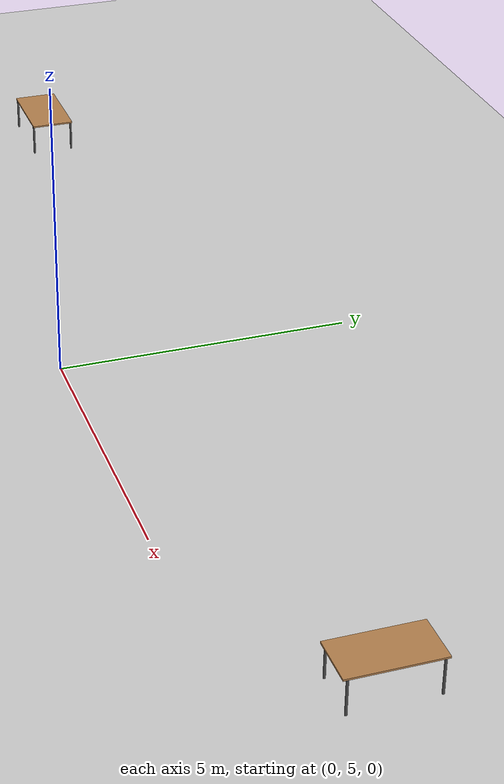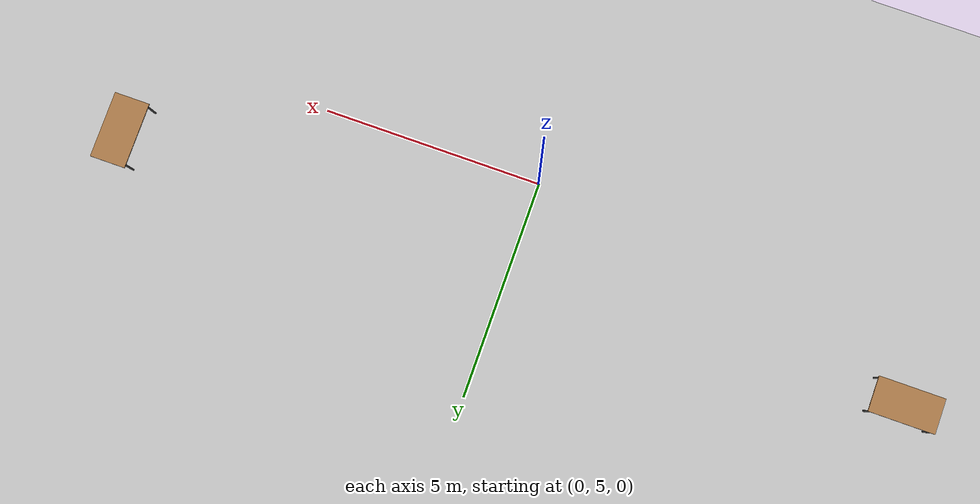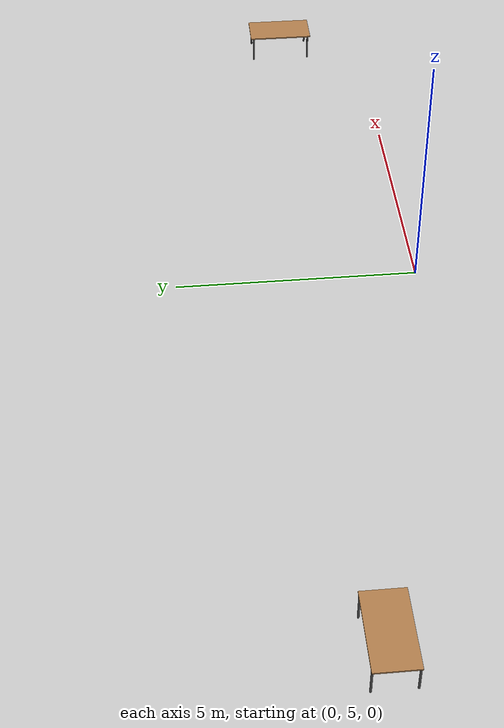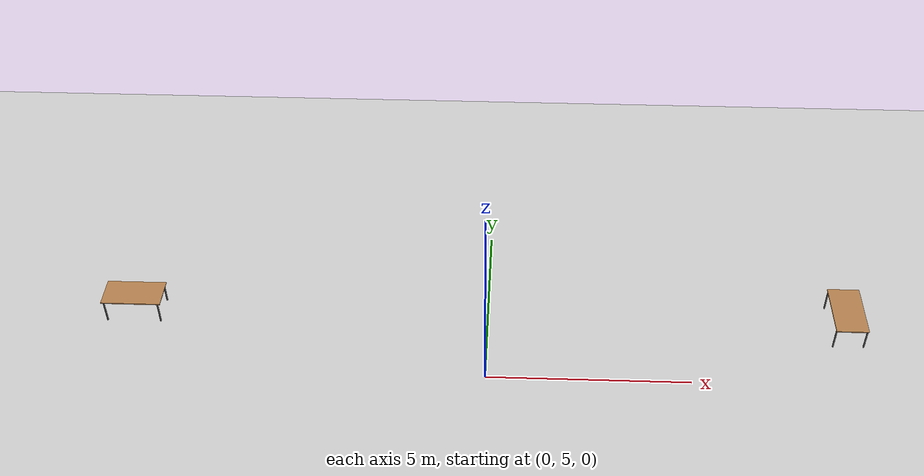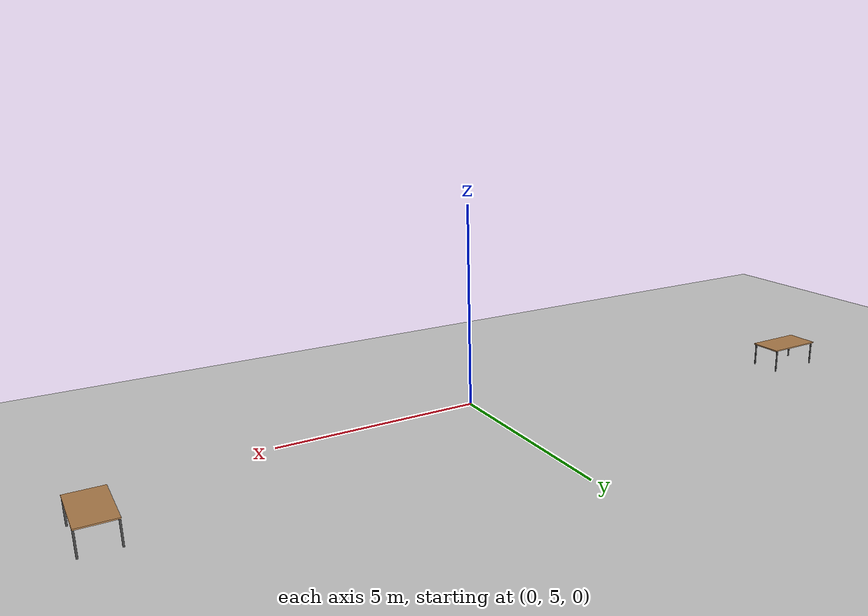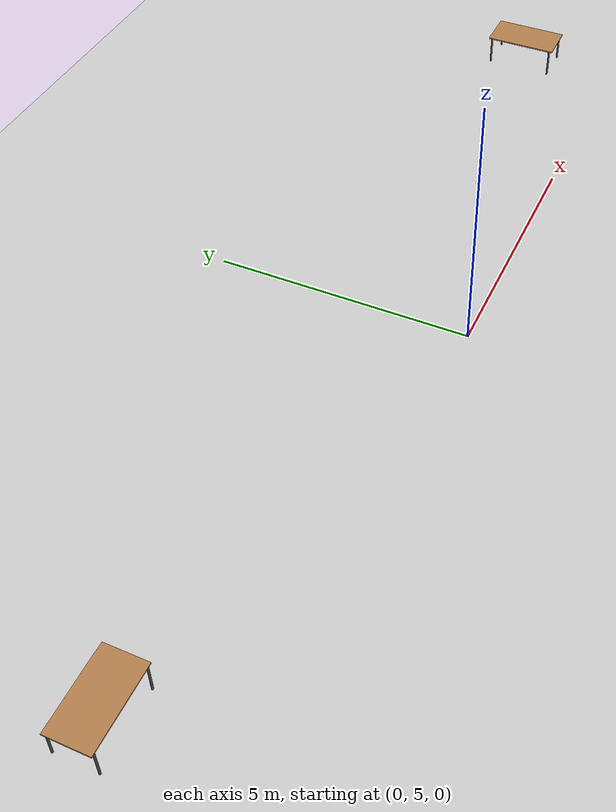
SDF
<sdf version="1.9">
 <world name="world_template">
  <scene><ambient>1 1 1 1</ambient><background>0.8 0.8 0.8 1</background><shadows>true</shadows></scene>
  <gravity>0 0 -9.8</gravity>
  <magnetic_field>6e-06 2.3e-05 -4.2e-05</magnetic_field>
  <atmosphere type="adiabatic"/>
  <physics type="ode">
   <max_step_size>0.001</max_step_size>
   <real_time_factor>1</real_time_factor>
   <real_time_update_rate>1000</real_time_update_rate>
  </physics>
  <light name="sun" type="directional">
   <pose>0 0 10 0 -0 0</pose>
   <intensity>1</intensity>
   <direction>-0.5 0.1 -0.9</direction>
   <diffuse>0.8 0.8 0.8 1</diffuse>
   <specular>0.2 0.2 0.2 1</specular>
   <attenuation>
    <range>1000</range>
    <linear>0.01</linear>
    <constant>0.90000000000000002</constant>
    <quadratic>0.001</quadratic>
   </attenuation>
   <spot><inner_angle>0</inner_angle><outer_angle>0</outer_angle><falloff>0</falloff></spot>
  </light>
  <model name="ground_plane">
   <static>true</static>
   <link name="link">
    <collision name="collision">
     <geometry><plane><normal>0 0 1</normal><size>100 100</size></plane></geometry>
    </collision>
    <visual name="visual">
     <geometry><plane><normal>0 0 1</normal><size>100 100</size></plane></geometry>
     <material>
      <ambient>0.8 0.8 0.8 1</ambient>
      <diffuse>0.8 0.8 0.8 1</diffuse>
      <specular>0.8 0.8 0.8 1</specular>
     </material>
    </visual>
    <inertial>
     <mass>1</mass>
     <inertia><ixx>1</ixx><ixy>0</ixy><ixz>0</ixz><iyy>1</iyy><iyz>0</iyz><izz>1</izz></inertia>
    </inertial>
   </link>
  </model>
  <include><uri>model://table</uri><name>table0</name><pose>9 7 0.0 0.0 0.0 -1.5707963267948966</pose></include>
  <include><uri>model://table</uri><name>table1</name><pose>-9 7 0.0 0.0 0.0 0.0</pose></include>
 </world>
</sdf>

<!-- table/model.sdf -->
<sdf version="1.5">
  <model name="table">
    <static>true</static>
    <link name="link">
      <collision name="surface">
        <pose>0 0 0.60 0 0 0</pose>
        <geometry>
          <box>
            <size>1.5 0.8 0.03</size>
          </box>
        </geometry>
        <surface>
          <friction>
            <ode>
              <mu>0.6</mu>
              <mu2>0.6</mu2>
            </ode>
          </friction>
        </surface>
      </collision>
      <visual name="visual1">
        <pose>0 0 0.60 0 0 0</pose>
        <geometry>
          <box>
            <size>1.5 0.8 0.03</size>
          </box>
        </geometry>
        <material>
          <ambient>0.6 0.4 0.2 1</ambient>
          <diffuse>0.7 0.5 0.3 1</diffuse>
          <specular>0.1 0.1 0.05 1</specular>
          <!-- PBR for Ignition, material scripts for gazebo classic-->
          <pbr>
            <metal>
              <albedo_map>Table_Diffuse.jpg</albedo_map>
            </metal>
          </pbr>
        </material>
      </visual>
      <collision name="front_left_leg">
        <pose>0.68 0.38 0.30 0 0 0</pose>
        <geometry>
          <cylinder>
            <radius>0.02</radius>
            <length>0.60</length>
          </cylinder>
        </geometry>
      </collision>
      <visual name="front_left_leg">
        <pose>0.68 0.38 0.30 0 0 0</pose>
        <geometry>
          <cylinder>
            <radius>0.02</radius>
            <length>0.60</length>
          </cylinder>
        </geometry>
        <material>
          <ambient>0.2 0.2 0.2 1</ambient>
          <diffuse>0.3 0.3 0.3 1</diffuse>
          <specular>0.1 0.1 0.1 1</specular>
        </material>
      </visual>
      <collision name="front_right_leg">
        <pose>0.68 -0.38 0.30 0 0 0</pose>
        <geometry>
          <cylinder>
            <radius>0.02</radius>
            <length>0.60</length>
          </cylinder>
        </geometry>
      </collision>
      <visual name="front_right_leg">
        <pose>0.68 -0.38 0.30 0 0 0</pose>
        <geometry>
          <cylinder>
            <radius>0.02</radius>
            <length>0.60</length>
          </cylinder>
        </geometry>
        <material>
          <ambient>0.2 0.2 0.2 1</ambient>
          <diffuse>0.3 0.3 0.3 1</diffuse>
          <specular>0.1 0.1 0.1 1</specular>
        </material>
      </visual>
      <collision name="back_right_leg">
        <pose>-0.68 -0.38 0.30 0 0 0</pose>
        <geometry>
          <cylinder>
            <radius>0.02</radius>
            <length>0.60</length>
          </cylinder>
        </geometry>
      </collision>
      <visual name="back_right_leg">
        <pose>-0.68 -0.38 0.30 0 0 0</pose>
        <geometry>
          <cylinder>
            <radius>0.02</radius>
            <length>0.60</length>
          </cylinder>
        </geometry>
        <material>
          <ambient>0.2 0.2 0.2 1</ambient>
          <diffuse>0.3 0.3 0.3 1</diffuse>
          <specular>0.1 0.1 0.1 1</specular>
        </material>
      </visual>
      <collision name="back_left_leg">
        <pose>-0.68 0.38 0.30 0 0 0</pose>
        <geometry>
          <cylinder>
            <radius>0.02</radius>
            <length>0.60</length>
          </cylinder>
        </geometry>
      </collision>
      <visual name="back_left_leg">
        <pose>-0.68 0.38 0.30 0 0 0</pose>
        <geometry>
          <cylinder>
            <radius>0.02</radius>
            <length>0.60</length>
          </cylinder>
        </geometry>
        <material>
          <ambient>0.2 0.2 0.2 1</ambient>
          <diffuse>0.3 0.3 0.3 1</diffuse>
          <specular>0.1 0.1 0.1 1</specular>
        </material>
      </visual>
    </link>
  </model>
</sdf>
